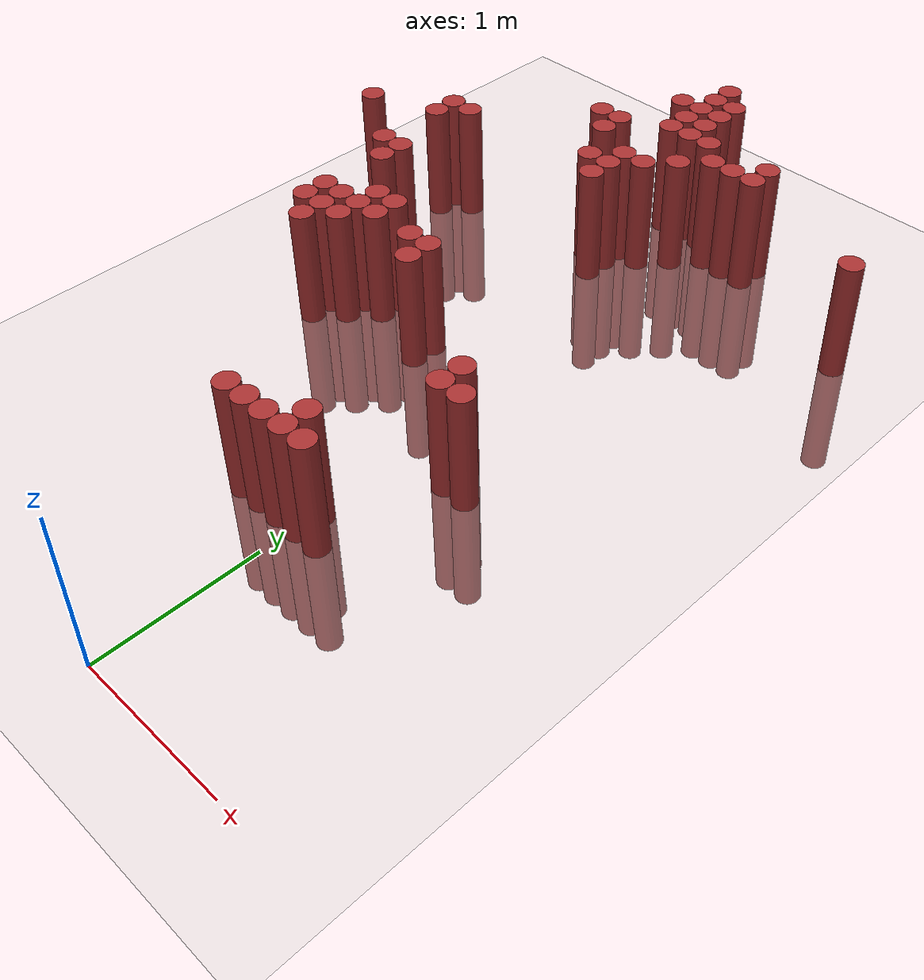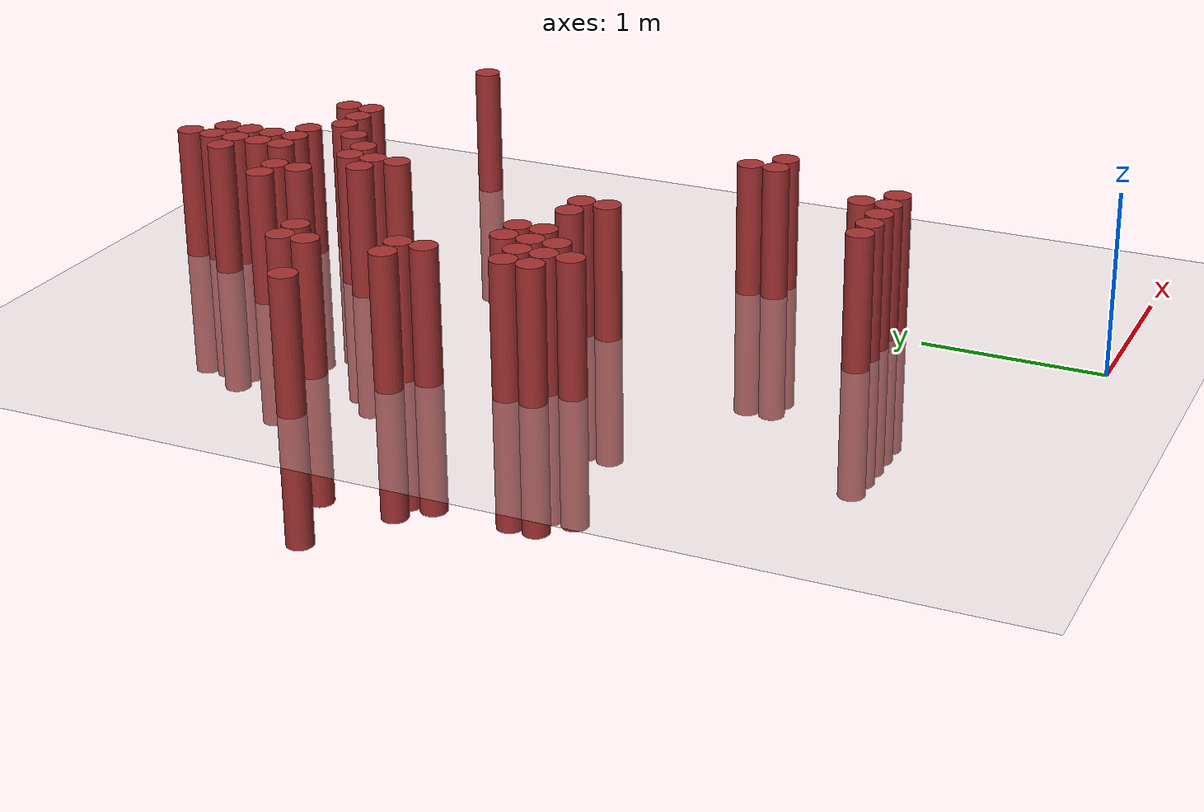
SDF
<sdf version="1.6">
 <world name="default">
  <model name="ground_plane">
   <static>1</static>
   <link name="link">
    <collision name="collision">
     <geometry><plane><normal>0 0 1</normal><size>100 100</size></plane></geometry>
     <surface><friction><ode><mu>100</mu><mu2>50</mu2></ode></friction></surface>
    </collision>
    <visual name="visual">
     <cast_shadows>0</cast_shadows>
     <geometry><plane><normal>0 0 1</normal><size>100 100</size></plane></geometry>
     <material>
      <script><uri>file://media/materials/scripts/gazebo.material</uri><name>Gazebo/Grey</name></script>
     </material>
    </visual>
   </link>
  </model>
  <model name="unit_cylinder_322">
   <static>1</static>
   <pose>-2.075000 3.625000 0.000000 0.000000 0.000000 0.000000</pose>
   <link name="link">
    <inertial>
     <mass>1</mass>
     <inertia><ixx>0.145833</ixx><ixy>0</ixy><ixz>0</ixz><iyy>0.145833</iyy><iyz>0</iyz><izz>0.125</izz></inertia>
    </inertial>
    <collision name="collision">
     <geometry><cylinder><radius>0.075000</radius><length>1.5</length></cylinder></geometry>
    </collision>
    <visual name="visual">
     <geometry><cylinder><radius>0.075000</radius><length>1.5</length></cylinder></geometry>
     <material>
      <ambient>0.648000 0.192000 0.192000 1</ambient>
      <diffuse>0.648000 0.192000 0.192000 1</diffuse>
     </material>
     <material>
      <script><name>Gazebo/Grey</name><uri>file://media/materials/scripts/gazebo.material</uri></script>
     </material>
    </visual>
   </link>
  </model>
  <model name="unit_cylinder_324">
   <static>1</static>
   <pose>-1.625000 3.325000 0.000000 0.000000 0.000000 0.000000</pose>
   <link name="link">
    <inertial>
     <mass>1</mass>
     <inertia><ixx>0.145833</ixx><ixy>0</ixy><ixz>0</ixz><iyy>0.145833</iyy><iyz>0</iyz><izz>0.125</izz></inertia>
    </inertial>
    <collision name="collision">
     <geometry><cylinder><radius>0.075000</radius><length>1.5</length></cylinder></geometry>
    </collision>
    <visual name="visual">
     <geometry><cylinder><radius>0.075000</radius><length>1.5</length></cylinder></geometry>
     <material>
      <ambient>0.648000 0.192000 0.192000 1</ambient>
      <diffuse>0.648000 0.192000 0.192000 1</diffuse>
     </material>
     <material>
      <script><name>Gazebo/Grey</name><uri>file://media/materials/scripts/gazebo.material</uri></script>
     </material>
    </visual>
   </link>
  </model>
  <model name="unit_cylinder_325">
   <static>1</static>
   <pose>-1.625000 3.775000 0.000000 0.000000 0.000000 0.000000</pose>
   <link name="link">
    <inertial>
     <mass>1</mass>
     <inertia><ixx>0.145833</ixx><ixy>0</ixy><ixz>0</ixz><iyy>0.145833</iyy><iyz>0</iyz><izz>0.125</izz></inertia>
    </inertial>
    <collision name="collision">
     <geometry><cylinder><radius>0.075000</radius><length>1.5</length></cylinder></geometry>
    </collision>
    <visual name="visual">
     <geometry><cylinder><radius>0.075000</radius><length>1.5</length></cylinder></geometry>
     <material>
      <ambient>0.648000 0.192000 0.192000 1</ambient>
      <diffuse>0.648000 0.192000 0.192000 1</diffuse>
     </material>
     <material>
      <script><name>Gazebo/Grey</name><uri>file://media/materials/scripts/gazebo.material</uri></script>
     </material>
    </visual>
   </link>
  </model>
  <model name="unit_cylinder_326">
   <static>1</static>
   <pose>-1.625000 3.925000 0.000000 0.000000 0.000000 0.000000</pose>
   <link name="link">
    <inertial>
     <mass>1</mass>
     <inertia><ixx>0.145833</ixx><ixy>0</ixy><ixz>0</ixz><iyy>0.145833</iyy><iyz>0</iyz><izz>0.125</izz></inertia>
    </inertial>
    <collision name="collision">
     <geometry><cylinder><radius>0.075000</radius><length>1.5</length></cylinder></geometry>
    </collision>
    <visual name="visual">
     <geometry><cylinder><radius>0.075000</radius><length>1.5</length></cylinder></geometry>
     <material>
      <ambient>0.648000 0.192000 0.192000 1</ambient>
      <diffuse>0.648000 0.192000 0.192000 1</diffuse>
     </material>
     <material>
      <script><name>Gazebo/Grey</name><uri>file://media/materials/scripts/gazebo.material</uri></script>
     </material>
    </visual>
   </link>
  </model>
  <model name="unit_cylinder_327">
   <static>1</static>
   <pose>-1.475000 2.575000 0.000000 0.000000 0.000000 0.000000</pose>
   <link name="link">
    <inertial>
     <mass>1</mass>
     <inertia><ixx>0.145833</ixx><ixy>0</ixy><ixz>0</ixz><iyy>0.145833</iyy><iyz>0</iyz><izz>0.125</izz></inertia>
    </inertial>
    <collision name="collision">
     <geometry><cylinder><radius>0.075000</radius><length>1.5</length></cylinder></geometry>
    </collision>
    <visual name="visual">
     <geometry><cylinder><radius>0.075000</radius><length>1.5</length></cylinder></geometry>
     <material>
      <ambient>0.648000 0.192000 0.192000 1</ambient>
      <diffuse>0.648000 0.192000 0.192000 1</diffuse>
     </material>
     <material>
      <script><name>Gazebo/Grey</name><uri>file://media/materials/scripts/gazebo.material</uri></script>
     </material>
    </visual>
   </link>
  </model>
  <model name="unit_cylinder_328">
   <static>1</static>
   <pose>-1.475000 2.725000 0.000000 0.000000 0.000000 0.000000</pose>
   <link name="link">
    <inertial>
     <mass>1</mass>
     <inertia><ixx>0.145833</ixx><ixy>0</ixy><ixz>0</ixz><iyy>0.145833</iyy><iyz>0</iyz><izz>0.125</izz></inertia>
    </inertial>
    <collision name="collision">
     <geometry><cylinder><radius>0.075000</radius><length>1.5</length></cylinder></geometry>
    </collision>
    <visual name="visual">
     <geometry><cylinder><radius>0.075000</radius><length>1.5</length></cylinder></geometry>
     <material>
      <ambient>0.648000 0.192000 0.192000 1</ambient>
      <diffuse>0.648000 0.192000 0.192000 1</diffuse>
     </material>
     <material>
      <script><name>Gazebo/Grey</name><uri>file://media/materials/scripts/gazebo.material</uri></script>
     </material>
    </visual>
   </link>
  </model>
  <model name="unit_cylinder_329">
   <static>1</static>
   <pose>-1.475000 3.175000 0.000000 0.000000 0.000000 0.000000</pose>
   <link name="link">
    <inertial>
     <mass>1</mass>
     <inertia><ixx>0.145833</ixx><ixy>0</ixy><ixz>0</ixz><iyy>0.145833</iyy><iyz>0</iyz><izz>0.125</izz></inertia>
    </inertial>
    <collision name="collision">
     <geometry><cylinder><radius>0.075000</radius><length>1.5</length></cylinder></geometry>
    </collision>
    <visual name="visual">
     <geometry><cylinder><radius>0.075000</radius><length>1.5</length></cylinder></geometry>
     <material>
      <ambient>0.648000 0.192000 0.192000 1</ambient>
      <diffuse>0.648000 0.192000 0.192000 1</diffuse>
     </material>
     <material>
      <script><name>Gazebo/Grey</name><uri>file://media/materials/scripts/gazebo.material</uri></script>
     </material>
    </visual>
   </link>
  </model>
  <model name="unit_cylinder_330">
   <static>1</static>
   <pose>-1.475000 3.325000 0.000000 0.000000 0.000000 0.000000</pose>
   <link name="link">
    <inertial>
     <mass>1</mass>
     <inertia><ixx>0.145833</ixx><ixy>0</ixy><ixz>0</ixz><iyy>0.145833</iyy><iyz>0</iyz><izz>0.125</izz></inertia>
    </inertial>
    <collision name="collision">
     <geometry><cylinder><radius>0.075000</radius><length>1.5</length></cylinder></geometry>
    </collision>
    <visual name="visual">
     <geometry><cylinder><radius>0.075000</radius><length>1.5</length></cylinder></geometry>
     <material>
      <ambient>0.648000 0.192000 0.192000 1</ambient>
      <diffuse>0.648000 0.192000 0.192000 1</diffuse>
     </material>
     <material>
      <script><name>Gazebo/Grey</name><uri>file://media/materials/scripts/gazebo.material</uri></script>
     </material>
    </visual>
   </link>
  </model>
  <model name="unit_cylinder_331">
   <static>1</static>
   <pose>-1.475000 3.925000 0.000000 0.000000 0.000000 0.000000</pose>
   <link name="link">
    <inertial>
     <mass>1</mass>
     <inertia><ixx>0.145833</ixx><ixy>0</ixy><ixz>0</ixz><iyy>0.145833</iyy><iyz>0</iyz><izz>0.125</izz></inertia>
    </inertial>
    <collision name="collision">
     <geometry><cylinder><radius>0.075000</radius><length>1.5</length></cylinder></geometry>
    </collision>
    <visual name="visual">
     <geometry><cylinder><radius>0.075000</radius><length>1.5</length></cylinder></geometry>
     <material>
      <ambient>0.648000 0.192000 0.192000 1</ambient>
      <diffuse>0.648000 0.192000 0.192000 1</diffuse>
     </material>
     <material>
      <script><name>Gazebo/Grey</name><uri>file://media/materials/scripts/gazebo.material</uri></script>
     </material>
    </visual>
   </link>
  </model>
  <model name="unit_cylinder_332">
   <static>1</static>
   <pose>-1.325000 2.425000 0.000000 0.000000 0.000000 0.000000</pose>
   <link name="link">
    <inertial>
     <mass>1</mass>
     <inertia><ixx>0.145833</ixx><ixy>0</ixy><ixz>0</ixz><iyy>0.145833</iyy><iyz>0</iyz><izz>0.125</izz></inertia>
    </inertial>
    <collision name="collision">
     <geometry><cylinder><radius>0.075000</radius><length>1.5</length></cylinder></geometry>
    </collision>
    <visual name="visual">
     <geometry><cylinder><radius>0.075000</radius><length>1.5</length></cylinder></geometry>
     <material>
      <ambient>0.648000 0.192000 0.192000 1</ambient>
      <diffuse>0.648000 0.192000 0.192000 1</diffuse>
     </material>
     <material>
      <script><name>Gazebo/Grey</name><uri>file://media/materials/scripts/gazebo.material</uri></script>
     </material>
    </visual>
   </link>
  </model>
  <model name="unit_cylinder_333">
   <static>1</static>
   <pose>-1.325000 2.575000 0.000000 0.000000 0.000000 0.000000</pose>
   <link name="link">
    <inertial>
     <mass>1</mass>
     <inertia><ixx>0.145833</ixx><ixy>0</ixy><ixz>0</ixz><iyy>0.145833</iyy><iyz>0</iyz><izz>0.125</izz></inertia>
    </inertial>
    <collision name="collision">
     <geometry><cylinder><radius>0.075000</radius><length>1.5</length></cylinder></geometry>
    </collision>
    <visual name="visual">
     <geometry><cylinder><radius>0.075000</radius><length>1.5</length></cylinder></geometry>
     <material>
      <ambient>0.648000 0.192000 0.192000 1</ambient>
      <diffuse>0.648000 0.192000 0.192000 1</diffuse>
     </material>
     <material>
      <script><name>Gazebo/Grey</name><uri>file://media/materials/scripts/gazebo.material</uri></script>
     </material>
    </visual>
   </link>
  </model>
  <model name="unit_cylinder_334">
   <static>1</static>
   <pose>-1.325000 2.725000 0.000000 0.000000 0.000000 0.000000</pose>
   <link name="link">
    <inertial>
     <mass>1</mass>
     <inertia><ixx>0.145833</ixx><ixy>0</ixy><ixz>0</ixz><iyy>0.145833</iyy><iyz>0</iyz><izz>0.125</izz></inertia>
    </inertial>
    <collision name="collision">
     <geometry><cylinder><radius>0.075000</radius><length>1.5</length></cylinder></geometry>
    </collision>
    <visual name="visual">
     <geometry><cylinder><radius>0.075000</radius><length>1.5</length></cylinder></geometry>
     <material>
      <ambient>0.648000 0.192000 0.192000 1</ambient>
      <diffuse>0.648000 0.192000 0.192000 1</diffuse>
     </material>
     <material>
      <script><name>Gazebo/Grey</name><uri>file://media/materials/scripts/gazebo.material</uri></script>
     </material>
    </visual>
   </link>
  </model>
  <model name="unit_cylinder_339">
   <static>1</static>
   <pose>-1.175000 2.575000 0.000000 0.000000 0.000000 0.000000</pose>
   <link name="link">
    <inertial>
     <mass>1</mass>
     <inertia><ixx>0.145833</ixx><ixy>0</ixy><ixz>0</ixz><iyy>0.145833</iyy><iyz>0</iyz><izz>0.125</izz></inertia>
    </inertial>
    <collision name="collision">
     <geometry><cylinder><radius>0.075000</radius><length>1.5</length></cylinder></geometry>
    </collision>
    <visual name="visual">
     <geometry><cylinder><radius>0.075000</radius><length>1.5</length></cylinder></geometry>
     <material>
      <ambient>0.648000 0.192000 0.192000 1</ambient>
      <diffuse>0.648000 0.192000 0.192000 1</diffuse>
     </material>
     <material>
      <script><name>Gazebo/Grey</name><uri>file://media/materials/scripts/gazebo.material</uri></script>
     </material>
    </visual>
   </link>
  </model>
  <model name="unit_cylinder_340">
   <static>1</static>
   <pose>-1.175000 2.725000 0.000000 0.000000 0.000000 0.000000</pose>
   <link name="link">
    <inertial>
     <mass>1</mass>
     <inertia><ixx>0.145833</ixx><ixy>0</ixy><ixz>0</ixz><iyy>0.145833</iyy><iyz>0</iyz><izz>0.125</izz></inertia>
    </inertial>
    <collision name="collision">
     <geometry><cylinder><radius>0.075000</radius><length>1.5</length></cylinder></geometry>
    </collision>
    <visual name="visual">
     <geometry><cylinder><radius>0.075000</radius><length>1.5</length></cylinder></geometry>
     <material>
      <ambient>0.648000 0.192000 0.192000 1</ambient>
      <diffuse>0.648000 0.192000 0.192000 1</diffuse>
     </material>
     <material>
      <script><name>Gazebo/Grey</name><uri>file://media/materials/scripts/gazebo.material</uri></script>
     </material>
    </visual>
   </link>
  </model>
  <model name="unit_cylinder_341">
   <static>1</static>
   <pose>-1.175000 2.875000 0.000000 0.000000 0.000000 0.000000</pose>
   <link name="link">
    <inertial>
     <mass>1</mass>
     <inertia><ixx>0.145833</ixx><ixy>0</ixy><ixz>0</ixz><iyy>0.145833</iyy><iyz>0</iyz><izz>0.125</izz></inertia>
    </inertial>
    <collision name="collision">
     <geometry><cylinder><radius>0.075000</radius><length>1.5</length></cylinder></geometry>
    </collision>
    <visual name="visual">
     <geometry><cylinder><radius>0.075000</radius><length>1.5</length></cylinder></geometry>
     <material>
      <ambient>0.648000 0.192000 0.192000 1</ambient>
      <diffuse>0.648000 0.192000 0.192000 1</diffuse>
     </material>
     <material>
      <script><name>Gazebo/Grey</name><uri>file://media/materials/scripts/gazebo.material</uri></script>
     </material>
    </visual>
   </link>
  </model>
  <model name="unit_cylinder_347">
   <static>1</static>
   <pose>-1.025000 2.725000 0.000000 0.000000 0.000000 0.000000</pose>
   <link name="link">
    <inertial>
     <mass>1</mass>
     <inertia><ixx>0.145833</ixx><ixy>0</ixy><ixz>0</ixz><iyy>0.145833</iyy><iyz>0</iyz><izz>0.125</izz></inertia>
    </inertial>
    <collision name="collision">
     <geometry><cylinder><radius>0.075000</radius><length>1.5</length></cylinder></geometry>
    </collision>
    <visual name="visual">
     <geometry><cylinder><radius>0.075000</radius><length>1.5</length></cylinder></geometry>
     <material>
      <ambient>0.648000 0.192000 0.192000 1</ambient>
      <diffuse>0.648000 0.192000 0.192000 1</diffuse>
     </material>
     <material>
      <script><name>Gazebo/Grey</name><uri>file://media/materials/scripts/gazebo.material</uri></script>
     </material>
    </visual>
   </link>
  </model>
  <model name="unit_cylinder_348">
   <static>1</static>
   <pose>-1.025000 2.875000 0.000000 0.000000 0.000000 0.000000</pose>
   <link name="link">
    <inertial>
     <mass>1</mass>
     <inertia><ixx>0.145833</ixx><ixy>0</ixy><ixz>0</ixz><iyy>0.145833</iyy><iyz>0</iyz><izz>0.125</izz></inertia>
    </inertial>
    <collision name="collision">
     <geometry><cylinder><radius>0.075000</radius><length>1.5</length></cylinder></geometry>
    </collision>
    <visual name="visual">
     <geometry><cylinder><radius>0.075000</radius><length>1.5</length></cylinder></geometry>
     <material>
      <ambient>0.648000 0.192000 0.192000 1</ambient>
      <diffuse>0.648000 0.192000 0.192000 1</diffuse>
     </material>
     <material>
      <script><name>Gazebo/Grey</name><uri>file://media/materials/scripts/gazebo.material</uri></script>
     </material>
    </visual>
   </link>
  </model>
  <model name="unit_cylinder_353">
   <static>1</static>
   <pose>-0.875000 4.525000 0.000000 0.000000 0.000000 0.000000</pose>
   <link name="link">
    <inertial>
     <mass>1</mass>
     <inertia><ixx>0.145833</ixx><ixy>0</ixy><ixz>0</ixz><iyy>0.145833</iyy><iyz>0</iyz><izz>0.125</izz></inertia>
    </inertial>
    <collision name="collision">
     <geometry><cylinder><radius>0.075000</radius><length>1.5</length></cylinder></geometry>
    </collision>
    <visual name="visual">
     <geometry><cylinder><radius>0.075000</radius><length>1.5</length></cylinder></geometry>
     <material>
      <ambient>0.648000 0.192000 0.192000 1</ambient>
      <diffuse>0.648000 0.192000 0.192000 1</diffuse>
     </material>
     <material>
      <script><name>Gazebo/Grey</name><uri>file://media/materials/scripts/gazebo.material</uri></script>
     </material>
    </visual>
   </link>
  </model>
  <model name="unit_cylinder_354">
   <static>1</static>
   <pose>-0.725000 2.725000 0.000000 0.000000 0.000000 0.000000</pose>
   <link name="link">
    <inertial>
     <mass>1</mass>
     <inertia><ixx>0.145833</ixx><ixy>0</ixy><ixz>0</ixz><iyy>0.145833</iyy><iyz>0</iyz><izz>0.125</izz></inertia>
    </inertial>
    <collision name="collision">
     <geometry><cylinder><radius>0.075000</radius><length>1.5</length></cylinder></geometry>
    </collision>
    <visual name="visual">
     <geometry><cylinder><radius>0.075000</radius><length>1.5</length></cylinder></geometry>
     <material>
      <ambient>0.648000 0.192000 0.192000 1</ambient>
      <diffuse>0.648000 0.192000 0.192000 1</diffuse>
     </material>
     <material>
      <script><name>Gazebo/Grey</name><uri>file://media/materials/scripts/gazebo.material</uri></script>
     </material>
    </visual>
   </link>
  </model>
  <model name="unit_cylinder_355">
   <static>1</static>
   <pose>-0.725000 4.375000 0.000000 0.000000 0.000000 0.000000</pose>
   <link name="link">
    <inertial>
     <mass>1</mass>
     <inertia><ixx>0.145833</ixx><ixy>0</ixy><ixz>0</ixz><iyy>0.145833</iyy><iyz>0</iyz><izz>0.125</izz></inertia>
    </inertial>
    <collision name="collision">
     <geometry><cylinder><radius>0.075000</radius><length>1.5</length></cylinder></geometry>
    </collision>
    <visual name="visual">
     <geometry><cylinder><radius>0.075000</radius><length>1.5</length></cylinder></geometry>
     <material>
      <ambient>0.648000 0.192000 0.192000 1</ambient>
      <diffuse>0.648000 0.192000 0.192000 1</diffuse>
     </material>
     <material>
      <script><name>Gazebo/Grey</name><uri>file://media/materials/scripts/gazebo.material</uri></script>
     </material>
    </visual>
   </link>
  </model>
  <model name="unit_cylinder_356">
   <static>1</static>
   <pose>-0.725000 4.525000 0.000000 0.000000 0.000000 0.000000</pose>
   <link name="link">
    <inertial>
     <mass>1</mass>
     <inertia><ixx>0.145833</ixx><ixy>0</ixy><ixz>0</ixz><iyy>0.145833</iyy><iyz>0</iyz><izz>0.125</izz></inertia>
    </inertial>
    <collision name="collision">
     <geometry><cylinder><radius>0.075000</radius><length>1.5</length></cylinder></geometry>
    </collision>
    <visual name="visual">
     <geometry><cylinder><radius>0.075000</radius><length>1.5</length></cylinder></geometry>
     <material>
      <ambient>0.648000 0.192000 0.192000 1</ambient>
      <diffuse>0.648000 0.192000 0.192000 1</diffuse>
     </material>
     <material>
      <script><name>Gazebo/Grey</name><uri>file://media/materials/scripts/gazebo.material</uri></script>
     </material>
    </visual>
   </link>
  </model>
  <model name="unit_cylinder_359">
   <static>1</static>
   <pose>-0.575000 2.575000 0.000000 0.000000 0.000000 0.000000</pose>
   <link name="link">
    <inertial>
     <mass>1</mass>
     <inertia><ixx>0.145833</ixx><ixy>0</ixy><ixz>0</ixz><iyy>0.145833</iyy><iyz>0</iyz><izz>0.125</izz></inertia>
    </inertial>
    <collision name="collision">
     <geometry><cylinder><radius>0.075000</radius><length>1.5</length></cylinder></geometry>
    </collision>
    <visual name="visual">
     <geometry><cylinder><radius>0.075000</radius><length>1.5</length></cylinder></geometry>
     <material>
      <ambient>0.648000 0.192000 0.192000 1</ambient>
      <diffuse>0.648000 0.192000 0.192000 1</diffuse>
     </material>
     <material>
      <script><name>Gazebo/Grey</name><uri>file://media/materials/scripts/gazebo.material</uri></script>
     </material>
    </visual>
   </link>
  </model>
  <model name="unit_cylinder_360">
   <static>1</static>
   <pose>-0.575000 2.725000 0.000000 0.000000 0.000000 0.000000</pose>
   <link name="link">
    <inertial>
     <mass>1</mass>
     <inertia><ixx>0.145833</ixx><ixy>0</ixy><ixz>0</ixz><iyy>0.145833</iyy><iyz>0</iyz><izz>0.125</izz></inertia>
    </inertial>
    <collision name="collision">
     <geometry><cylinder><radius>0.075000</radius><length>1.5</length></cylinder></geometry>
    </collision>
    <visual name="visual">
     <geometry><cylinder><radius>0.075000</radius><length>1.5</length></cylinder></geometry>
     <material>
      <ambient>0.648000 0.192000 0.192000 1</ambient>
      <diffuse>0.648000 0.192000 0.192000 1</diffuse>
     </material>
     <material>
      <script><name>Gazebo/Grey</name><uri>file://media/materials/scripts/gazebo.material</uri></script>
     </material>
    </visual>
   </link>
  </model>
  <model name="unit_cylinder_361">
   <static>1</static>
   <pose>-0.575000 4.075000 0.000000 0.000000 0.000000 0.000000</pose>
   <link name="link">
    <inertial>
     <mass>1</mass>
     <inertia><ixx>0.145833</ixx><ixy>0</ixy><ixz>0</ixz><iyy>0.145833</iyy><iyz>0</iyz><izz>0.125</izz></inertia>
    </inertial>
    <collision name="collision">
     <geometry><cylinder><radius>0.075000</radius><length>1.5</length></cylinder></geometry>
    </collision>
    <visual name="visual">
     <geometry><cylinder><radius>0.075000</radius><length>1.5</length></cylinder></geometry>
     <material>
      <ambient>0.648000 0.192000 0.192000 1</ambient>
      <diffuse>0.648000 0.192000 0.192000 1</diffuse>
     </material>
     <material>
      <script><name>Gazebo/Grey</name><uri>file://media/materials/scripts/gazebo.material</uri></script>
     </material>
    </visual>
   </link>
  </model>
  <model name="unit_cylinder_362">
   <static>1</static>
   <pose>-0.575000 4.975000 0.000000 0.000000 0.000000 0.000000</pose>
   <link name="link">
    <inertial>
     <mass>1</mass>
     <inertia><ixx>0.145833</ixx><ixy>0</ixy><ixz>0</ixz><iyy>0.145833</iyy><iyz>0</iyz><izz>0.125</izz></inertia>
    </inertial>
    <collision name="collision">
     <geometry><cylinder><radius>0.075000</radius><length>1.5</length></cylinder></geometry>
    </collision>
    <visual name="visual">
     <geometry><cylinder><radius>0.075000</radius><length>1.5</length></cylinder></geometry>
     <material>
      <ambient>0.648000 0.192000 0.192000 1</ambient>
      <diffuse>0.648000 0.192000 0.192000 1</diffuse>
     </material>
     <material>
      <script><name>Gazebo/Grey</name><uri>file://media/materials/scripts/gazebo.material</uri></script>
     </material>
    </visual>
   </link>
  </model>
  <model name="unit_cylinder_367">
   <static>1</static>
   <pose>-0.425000 1.225000 0.000000 0.000000 0.000000 0.000000</pose>
   <link name="link">
    <inertial>
     <mass>1</mass>
     <inertia><ixx>0.145833</ixx><ixy>0</ixy><ixz>0</ixz><iyy>0.145833</iyy><iyz>0</iyz><izz>0.125</izz></inertia>
    </inertial>
    <collision name="collision">
     <geometry><cylinder><radius>0.075000</radius><length>1.5</length></cylinder></geometry>
    </collision>
    <visual name="visual">
     <geometry><cylinder><radius>0.075000</radius><length>1.5</length></cylinder></geometry>
     <material>
      <ambient>0.648000 0.192000 0.192000 1</ambient>
      <diffuse>0.648000 0.192000 0.192000 1</diffuse>
     </material>
     <material>
      <script><name>Gazebo/Grey</name><uri>file://media/materials/scripts/gazebo.material</uri></script>
     </material>
    </visual>
   </link>
  </model>
  <model name="unit_cylinder_368">
   <static>1</static>
   <pose>-0.425000 3.925000 0.000000 0.000000 0.000000 0.000000</pose>
   <link name="link">
    <inertial>
     <mass>1</mass>
     <inertia><ixx>0.145833</ixx><ixy>0</ixy><ixz>0</ixz><iyy>0.145833</iyy><iyz>0</iyz><izz>0.125</izz></inertia>
    </inertial>
    <collision name="collision">
     <geometry><cylinder><radius>0.075000</radius><length>1.5</length></cylinder></geometry>
    </collision>
    <visual name="visual">
     <geometry><cylinder><radius>0.075000</radius><length>1.5</length></cylinder></geometry>
     <material>
      <ambient>0.648000 0.192000 0.192000 1</ambient>
      <diffuse>0.648000 0.192000 0.192000 1</diffuse>
     </material>
     <material>
      <script><name>Gazebo/Grey</name><uri>file://media/materials/scripts/gazebo.material</uri></script>
     </material>
    </visual>
   </link>
  </model>
  <model name="unit_cylinder_369">
   <static>1</static>
   <pose>-0.425000 4.075000 0.000000 0.000000 0.000000 0.000000</pose>
   <link name="link">
    <inertial>
     <mass>1</mass>
     <inertia><ixx>0.145833</ixx><ixy>0</ixy><ixz>0</ixz><iyy>0.145833</iyy><iyz>0</iyz><izz>0.125</izz></inertia>
    </inertial>
    <collision name="collision">
     <geometry><cylinder><radius>0.075000</radius><length>1.5</length></cylinder></geometry>
    </collision>
    <visual name="visual">
     <geometry><cylinder><radius>0.075000</radius><length>1.5</length></cylinder></geometry>
     <material>
      <ambient>0.648000 0.192000 0.192000 1</ambient>
      <diffuse>0.648000 0.192000 0.192000 1</diffuse>
     </material>
     <material>
      <script><name>Gazebo/Grey</name><uri>file://media/materials/scripts/gazebo.material</uri></script>
     </material>
    </visual>
   </link>
  </model>
  <model name="unit_cylinder_370">
   <static>1</static>
   <pose>-0.425000 4.225000 0.000000 0.000000 0.000000 0.000000</pose>
   <link name="link">
    <inertial>
     <mass>1</mass>
     <inertia><ixx>0.145833</ixx><ixy>0</ixy><ixz>0</ixz><iyy>0.145833</iyy><iyz>0</iyz><izz>0.125</izz></inertia>
    </inertial>
    <collision name="collision">
     <geometry><cylinder><radius>0.075000</radius><length>1.5</length></cylinder></geometry>
    </collision>
    <visual name="visual">
     <geometry><cylinder><radius>0.075000</radius><length>1.5</length></cylinder></geometry>
     <material>
      <ambient>0.648000 0.192000 0.192000 1</ambient>
      <diffuse>0.648000 0.192000 0.192000 1</diffuse>
     </material>
     <material>
      <script><name>Gazebo/Grey</name><uri>file://media/materials/scripts/gazebo.material</uri></script>
     </material>
    </visual>
   </link>
  </model>
  <model name="unit_cylinder_371">
   <static>1</static>
   <pose>-0.425000 4.675000 0.000000 0.000000 0.000000 0.000000</pose>
   <link name="link">
    <inertial>
     <mass>1</mass>
     <inertia><ixx>0.145833</ixx><ixy>0</ixy><ixz>0</ixz><iyy>0.145833</iyy><iyz>0</iyz><izz>0.125</izz></inertia>
    </inertial>
    <collision name="collision">
     <geometry><cylinder><radius>0.075000</radius><length>1.5</length></cylinder></geometry>
    </collision>
    <visual name="visual">
     <geometry><cylinder><radius>0.075000</radius><length>1.5</length></cylinder></geometry>
     <material>
      <ambient>0.648000 0.192000 0.192000 1</ambient>
      <diffuse>0.648000 0.192000 0.192000 1</diffuse>
     </material>
     <material>
      <script><name>Gazebo/Grey</name><uri>file://media/materials/scripts/gazebo.material</uri></script>
     </material>
    </visual>
   </link>
  </model>
  <model name="unit_cylinder_372">
   <static>1</static>
   <pose>-0.425000 4.825000 0.000000 0.000000 0.000000 0.000000</pose>
   <link name="link">
    <inertial>
     <mass>1</mass>
     <inertia><ixx>0.145833</ixx><ixy>0</ixy><ixz>0</ixz><iyy>0.145833</iyy><iyz>0</iyz><izz>0.125</izz></inertia>
    </inertial>
    <collision name="collision">
     <geometry><cylinder><radius>0.075000</radius><length>1.5</length></cylinder></geometry>
    </collision>
    <visual name="visual">
     <geometry><cylinder><radius>0.075000</radius><length>1.5</length></cylinder></geometry>
     <material>
      <ambient>0.648000 0.192000 0.192000 1</ambient>
      <diffuse>0.648000 0.192000 0.192000 1</diffuse>
     </material>
     <material>
      <script><name>Gazebo/Grey</name><uri>file://media/materials/scripts/gazebo.material</uri></script>
     </material>
    </visual>
   </link>
  </model>
  <model name="unit_cylinder_373">
   <static>1</static>
   <pose>-0.425000 4.975000 0.000000 0.000000 0.000000 0.000000</pose>
   <link name="link">
    <inertial>
     <mass>1</mass>
     <inertia><ixx>0.145833</ixx><ixy>0</ixy><ixz>0</ixz><iyy>0.145833</iyy><iyz>0</iyz><izz>0.125</izz></inertia>
    </inertial>
    <collision name="collision">
     <geometry><cylinder><radius>0.075000</radius><length>1.5</length></cylinder></geometry>
    </collision>
    <visual name="visual">
     <geometry><cylinder><radius>0.075000</radius><length>1.5</length></cylinder></geometry>
     <material>
      <ambient>0.648000 0.192000 0.192000 1</ambient>
      <diffuse>0.648000 0.192000 0.192000 1</diffuse>
     </material>
     <material>
      <script><name>Gazebo/Grey</name><uri>file://media/materials/scripts/gazebo.material</uri></script>
     </material>
    </visual>
   </link>
  </model>
  <model name="unit_cylinder_374">
   <static>1</static>
   <pose>-0.425000 5.125000 0.000000 0.000000 0.000000 0.000000</pose>
   <link name="link">
    <inertial>
     <mass>1</mass>
     <inertia><ixx>0.145833</ixx><ixy>0</ixy><ixz>0</ixz><iyy>0.145833</iyy><iyz>0</iyz><izz>0.125</izz></inertia>
    </inertial>
    <collision name="collision">
     <geometry><cylinder><radius>0.075000</radius><length>1.5</length></cylinder></geometry>
    </collision>
    <visual name="visual">
     <geometry><cylinder><radius>0.075000</radius><length>1.5</length></cylinder></geometry>
     <material>
      <ambient>0.648000 0.192000 0.192000 1</ambient>
      <diffuse>0.648000 0.192000 0.192000 1</diffuse>
     </material>
     <material>
      <script><name>Gazebo/Grey</name><uri>file://media/materials/scripts/gazebo.material</uri></script>
     </material>
    </visual>
   </link>
  </model>
  <model name="unit_cylinder_375">
   <static>1</static>
   <pose>-0.425000 5.275000 0.000000 0.000000 0.000000 0.000000</pose>
   <link name="link">
    <inertial>
     <mass>1</mass>
     <inertia><ixx>0.145833</ixx><ixy>0</ixy><ixz>0</ixz><iyy>0.145833</iyy><iyz>0</iyz><izz>0.125</izz></inertia>
    </inertial>
    <collision name="collision">
     <geometry><cylinder><radius>0.075000</radius><length>1.5</length></cylinder></geometry>
    </collision>
    <visual name="visual">
     <geometry><cylinder><radius>0.075000</radius><length>1.5</length></cylinder></geometry>
     <material>
      <ambient>0.648000 0.192000 0.192000 1</ambient>
      <diffuse>0.648000 0.192000 0.192000 1</diffuse>
     </material>
     <material>
      <script><name>Gazebo/Grey</name><uri>file://media/materials/scripts/gazebo.material</uri></script>
     </material>
    </visual>
   </link>
  </model>
  <model name="unit_cylinder_378">
   <static>1</static>
   <pose>-0.275000 1.225000 0.000000 0.000000 0.000000 0.000000</pose>
   <link name="link">
    <inertial>
     <mass>1</mass>
     <inertia><ixx>0.145833</ixx><ixy>0</ixy><ixz>0</ixz><iyy>0.145833</iyy><iyz>0</iyz><izz>0.125</izz></inertia>
    </inertial>
    <collision name="collision">
     <geometry><cylinder><radius>0.075000</radius><length>1.5</length></cylinder></geometry>
    </collision>
    <visual name="visual">
     <geometry><cylinder><radius>0.075000</radius><length>1.5</length></cylinder></geometry>
     <material>
      <ambient>0.648000 0.192000 0.192000 1</ambient>
      <diffuse>0.648000 0.192000 0.192000 1</diffuse>
     </material>
     <material>
      <script><name>Gazebo/Grey</name><uri>file://media/materials/scripts/gazebo.material</uri></script>
     </material>
    </visual>
   </link>
  </model>
  <model name="unit_cylinder_379">
   <static>1</static>
   <pose>-0.275000 4.225000 0.000000 0.000000 0.000000 0.000000</pose>
   <link name="link">
    <inertial>
     <mass>1</mass>
     <inertia><ixx>0.145833</ixx><ixy>0</ixy><ixz>0</ixz><iyy>0.145833</iyy><iyz>0</iyz><izz>0.125</izz></inertia>
    </inertial>
    <collision name="collision">
     <geometry><cylinder><radius>0.075000</radius><length>1.5</length></cylinder></geometry>
    </collision>
    <visual name="visual">
     <geometry><cylinder><radius>0.075000</radius><length>1.5</length></cylinder></geometry>
     <material>
      <ambient>0.648000 0.192000 0.192000 1</ambient>
      <diffuse>0.648000 0.192000 0.192000 1</diffuse>
     </material>
     <material>
      <script><name>Gazebo/Grey</name><uri>file://media/materials/scripts/gazebo.material</uri></script>
     </material>
    </visual>
   </link>
  </model>
  <model name="unit_cylinder_380">
   <static>1</static>
   <pose>-0.275000 4.675000 0.000000 0.000000 0.000000 0.000000</pose>
   <link name="link">
    <inertial>
     <mass>1</mass>
     <inertia><ixx>0.145833</ixx><ixy>0</ixy><ixz>0</ixz><iyy>0.145833</iyy><iyz>0</iyz><izz>0.125</izz></inertia>
    </inertial>
    <collision name="collision">
     <geometry><cylinder><radius>0.075000</radius><length>1.5</length></cylinder></geometry>
    </collision>
    <visual name="visual">
     <geometry><cylinder><radius>0.075000</radius><length>1.5</length></cylinder></geometry>
     <material>
      <ambient>0.648000 0.192000 0.192000 1</ambient>
      <diffuse>0.648000 0.192000 0.192000 1</diffuse>
     </material>
     <material>
      <script><name>Gazebo/Grey</name><uri>file://media/materials/scripts/gazebo.material</uri></script>
     </material>
    </visual>
   </link>
  </model>
  <model name="unit_cylinder_381">
   <static>1</static>
   <pose>-0.275000 4.825000 0.000000 0.000000 0.000000 0.000000</pose>
   <link name="link">
    <inertial>
     <mass>1</mass>
     <inertia><ixx>0.145833</ixx><ixy>0</ixy><ixz>0</ixz><iyy>0.145833</iyy><iyz>0</iyz><izz>0.125</izz></inertia>
    </inertial>
    <collision name="collision">
     <geometry><cylinder><radius>0.075000</radius><length>1.5</length></cylinder></geometry>
    </collision>
    <visual name="visual">
     <geometry><cylinder><radius>0.075000</radius><length>1.5</length></cylinder></geometry>
     <material>
      <ambient>0.648000 0.192000 0.192000 1</ambient>
      <diffuse>0.648000 0.192000 0.192000 1</diffuse>
     </material>
     <material>
      <script><name>Gazebo/Grey</name><uri>file://media/materials/scripts/gazebo.material</uri></script>
     </material>
    </visual>
   </link>
  </model>
  <model name="unit_cylinder_382">
   <static>1</static>
   <pose>-0.275000 4.975000 0.000000 0.000000 0.000000 0.000000</pose>
   <link name="link">
    <inertial>
     <mass>1</mass>
     <inertia><ixx>0.145833</ixx><ixy>0</ixy><ixz>0</ixz><iyy>0.145833</iyy><iyz>0</iyz><izz>0.125</izz></inertia>
    </inertial>
    <collision name="collision">
     <geometry><cylinder><radius>0.075000</radius><length>1.5</length></cylinder></geometry>
    </collision>
    <visual name="visual">
     <geometry><cylinder><radius>0.075000</radius><length>1.5</length></cylinder></geometry>
     <material>
      <ambient>0.648000 0.192000 0.192000 1</ambient>
      <diffuse>0.648000 0.192000 0.192000 1</diffuse>
     </material>
     <material>
      <script><name>Gazebo/Grey</name><uri>file://media/materials/scripts/gazebo.material</uri></script>
     </material>
    </visual>
   </link>
  </model>
  <model name="unit_cylinder_383">
   <static>1</static>
   <pose>-0.275000 5.125000 0.000000 0.000000 0.000000 0.000000</pose>
   <link name="link">
    <inertial>
     <mass>1</mass>
     <inertia><ixx>0.145833</ixx><ixy>0</ixy><ixz>0</ixz><iyy>0.145833</iyy><iyz>0</iyz><izz>0.125</izz></inertia>
    </inertial>
    <collision name="collision">
     <geometry><cylinder><radius>0.075000</radius><length>1.5</length></cylinder></geometry>
    </collision>
    <visual name="visual">
     <geometry><cylinder><radius>0.075000</radius><length>1.5</length></cylinder></geometry>
     <material>
      <ambient>0.648000 0.192000 0.192000 1</ambient>
      <diffuse>0.648000 0.192000 0.192000 1</diffuse>
     </material>
     <material>
      <script><name>Gazebo/Grey</name><uri>file://media/materials/scripts/gazebo.material</uri></script>
     </material>
    </visual>
   </link>
  </model>
  <model name="unit_cylinder_387">
   <static>1</static>
   <pose>-0.125000 1.225000 0.000000 0.000000 0.000000 0.000000</pose>
   <link name="link">
    <inertial>
     <mass>1</mass>
     <inertia><ixx>0.145833</ixx><ixy>0</ixy><ixz>0</ixz><iyy>0.145833</iyy><iyz>0</iyz><izz>0.125</izz></inertia>
    </inertial>
    <collision name="collision">
     <geometry><cylinder><radius>0.075000</radius><length>1.5</length></cylinder></geometry>
    </collision>
    <visual name="visual">
     <geometry><cylinder><radius>0.075000</radius><length>1.5</length></cylinder></geometry>
     <material>
      <ambient>0.648000 0.192000 0.192000 1</ambient>
      <diffuse>0.648000 0.192000 0.192000 1</diffuse>
     </material>
     <material>
      <script><name>Gazebo/Grey</name><uri>file://media/materials/scripts/gazebo.material</uri></script>
     </material>
    </visual>
   </link>
  </model>
  <model name="unit_cylinder_388">
   <static>1</static>
   <pose>-0.125000 4.375000 0.000000 0.000000 0.000000 0.000000</pose>
   <link name="link">
    <inertial>
     <mass>1</mass>
     <inertia><ixx>0.145833</ixx><ixy>0</ixy><ixz>0</ixz><iyy>0.145833</iyy><iyz>0</iyz><izz>0.125</izz></inertia>
    </inertial>
    <collision name="collision">
     <geometry><cylinder><radius>0.075000</radius><length>1.5</length></cylinder></geometry>
    </collision>
    <visual name="visual">
     <geometry><cylinder><radius>0.075000</radius><length>1.5</length></cylinder></geometry>
     <material>
      <ambient>0.648000 0.192000 0.192000 1</ambient>
      <diffuse>0.648000 0.192000 0.192000 1</diffuse>
     </material>
     <material>
      <script><name>Gazebo/Grey</name><uri>file://media/materials/scripts/gazebo.material</uri></script>
     </material>
    </visual>
   </link>
  </model>
  <model name="unit_cylinder_389">
   <static>1</static>
   <pose>-0.125000 4.675000 0.000000 0.000000 0.000000 0.000000</pose>
   <link name="link">
    <inertial>
     <mass>1</mass>
     <inertia><ixx>0.145833</ixx><ixy>0</ixy><ixz>0</ixz><iyy>0.145833</iyy><iyz>0</iyz><izz>0.125</izz></inertia>
    </inertial>
    <collision name="collision">
     <geometry><cylinder><radius>0.075000</radius><length>1.5</length></cylinder></geometry>
    </collision>
    <visual name="visual">
     <geometry><cylinder><radius>0.075000</radius><length>1.5</length></cylinder></geometry>
     <material>
      <ambient>0.648000 0.192000 0.192000 1</ambient>
      <diffuse>0.648000 0.192000 0.192000 1</diffuse>
     </material>
     <material>
      <script><name>Gazebo/Grey</name><uri>file://media/materials/scripts/gazebo.material</uri></script>
     </material>
    </visual>
   </link>
  </model>
  <model name="unit_cylinder_393">
   <static>1</static>
   <pose>0.025000 1.225000 0.000000 0.000000 0.000000 0.000000</pose>
   <link name="link">
    <inertial>
     <mass>1</mass>
     <inertia><ixx>0.145833</ixx><ixy>0</ixy><ixz>0</ixz><iyy>0.145833</iyy><iyz>0</iyz><izz>0.125</izz></inertia>
    </inertial>
    <collision name="collision">
     <geometry><cylinder><radius>0.075000</radius><length>1.5</length></cylinder></geometry>
    </collision>
    <visual name="visual">
     <geometry><cylinder><radius>0.075000</radius><length>1.5</length></cylinder></geometry>
     <material>
      <ambient>0.648000 0.192000 0.192000 1</ambient>
      <diffuse>0.648000 0.192000 0.192000 1</diffuse>
     </material>
     <material>
      <script><name>Gazebo/Grey</name><uri>file://media/materials/scripts/gazebo.material</uri></script>
     </material>
    </visual>
   </link>
  </model>
  <model name="unit_cylinder_394">
   <static>1</static>
   <pose>0.025000 1.375000 0.000000 0.000000 0.000000 0.000000</pose>
   <link name="link">
    <inertial>
     <mass>1</mass>
     <inertia><ixx>0.145833</ixx><ixy>0</ixy><ixz>0</ixz><iyy>0.145833</iyy><iyz>0</iyz><izz>0.125</izz></inertia>
    </inertial>
    <collision name="collision">
     <geometry><cylinder><radius>0.075000</radius><length>1.5</length></cylinder></geometry>
    </collision>
    <visual name="visual">
     <geometry><cylinder><radius>0.075000</radius><length>1.5</length></cylinder></geometry>
     <material>
      <ambient>0.648000 0.192000 0.192000 1</ambient>
      <diffuse>0.648000 0.192000 0.192000 1</diffuse>
     </material>
     <material>
      <script><name>Gazebo/Grey</name><uri>file://media/materials/scripts/gazebo.material</uri></script>
     </material>
    </visual>
   </link>
  </model>
  <model name="unit_cylinder_395">
   <static>1</static>
   <pose>0.025000 4.525000 0.000000 0.000000 0.000000 0.000000</pose>
   <link name="link">
    <inertial>
     <mass>1</mass>
     <inertia><ixx>0.145833</ixx><ixy>0</ixy><ixz>0</ixz><iyy>0.145833</iyy><iyz>0</iyz><izz>0.125</izz></inertia>
    </inertial>
    <collision name="collision">
     <geometry><cylinder><radius>0.075000</radius><length>1.5</length></cylinder></geometry>
    </collision>
    <visual name="visual">
     <geometry><cylinder><radius>0.075000</radius><length>1.5</length></cylinder></geometry>
     <material>
      <ambient>0.648000 0.192000 0.192000 1</ambient>
      <diffuse>0.648000 0.192000 0.192000 1</diffuse>
     </material>
     <material>
      <script><name>Gazebo/Grey</name><uri>file://media/materials/scripts/gazebo.material</uri></script>
     </material>
    </visual>
   </link>
  </model>
  <model name="unit_cylinder_399">
   <static>1</static>
   <pose>0.175000 1.225000 0.000000 0.000000 0.000000 0.000000</pose>
   <link name="link">
    <inertial>
     <mass>1</mass>
     <inertia><ixx>0.145833</ixx><ixy>0</ixy><ixz>0</ixz><iyy>0.145833</iyy><iyz>0</iyz><izz>0.125</izz></inertia>
    </inertial>
    <collision name="collision">
     <geometry><cylinder><radius>0.075000</radius><length>1.5</length></cylinder></geometry>
    </collision>
    <visual name="visual">
     <geometry><cylinder><radius>0.075000</radius><length>1.5</length></cylinder></geometry>
     <material>
      <ambient>0.648000 0.192000 0.192000 1</ambient>
      <diffuse>0.648000 0.192000 0.192000 1</diffuse>
     </material>
     <material>
      <script><name>Gazebo/Grey</name><uri>file://media/materials/scripts/gazebo.material</uri></script>
     </material>
    </visual>
   </link>
  </model>
  <model name="unit_cylinder_400">
   <static>1</static>
   <pose>0.175000 4.525000 0.000000 0.000000 0.000000 0.000000</pose>
   <link name="link">
    <inertial>
     <mass>1</mass>
     <inertia><ixx>0.145833</ixx><ixy>0</ixy><ixz>0</ixz><iyy>0.145833</iyy><iyz>0</iyz><izz>0.125</izz></inertia>
    </inertial>
    <collision name="collision">
     <geometry><cylinder><radius>0.075000</radius><length>1.5</length></cylinder></geometry>
    </collision>
    <visual name="visual">
     <geometry><cylinder><radius>0.075000</radius><length>1.5</length></cylinder></geometry>
     <material>
      <ambient>0.648000 0.192000 0.192000 1</ambient>
      <diffuse>0.648000 0.192000 0.192000 1</diffuse>
     </material>
     <material>
      <script><name>Gazebo/Grey</name><uri>file://media/materials/scripts/gazebo.material</uri></script>
     </material>
    </visual>
   </link>
  </model>
  <model name="unit_cylinder_403">
   <static>1</static>
   <pose>0.325000 1.975000 0.000000 0.000000 0.000000 0.000000</pose>
   <link name="link">
    <inertial>
     <mass>1</mass>
     <inertia><ixx>0.145833</ixx><ixy>0</ixy><ixz>0</ixz><iyy>0.145833</iyy><iyz>0</iyz><izz>0.125</izz></inertia>
    </inertial>
    <collision name="collision">
     <geometry><cylinder><radius>0.075000</radius><length>1.5</length></cylinder></geometry>
    </collision>
    <visual name="visual">
     <geometry><cylinder><radius>0.075000</radius><length>1.5</length></cylinder></geometry>
     <material>
      <ambient>0.648000 0.192000 0.192000 1</ambient>
      <diffuse>0.648000 0.192000 0.192000 1</diffuse>
     </material>
     <material>
      <script><name>Gazebo/Grey</name><uri>file://media/materials/scripts/gazebo.material</uri></script>
     </material>
    </visual>
   </link>
  </model>
  <model name="unit_cylinder_404">
   <static>1</static>
   <pose>0.325000 2.125000 0.000000 0.000000 0.000000 0.000000</pose>
   <link name="link">
    <inertial>
     <mass>1</mass>
     <inertia><ixx>0.145833</ixx><ixy>0</ixy><ixz>0</ixz><iyy>0.145833</iyy><iyz>0</iyz><izz>0.125</izz></inertia>
    </inertial>
    <collision name="collision">
     <geometry><cylinder><radius>0.075000</radius><length>1.5</length></cylinder></geometry>
    </collision>
    <visual name="visual">
     <geometry><cylinder><radius>0.075000</radius><length>1.5</length></cylinder></geometry>
     <material>
      <ambient>0.648000 0.192000 0.192000 1</ambient>
      <diffuse>0.648000 0.192000 0.192000 1</diffuse>
     </material>
     <material>
      <script><name>Gazebo/Grey</name><uri>file://media/materials/scripts/gazebo.material</uri></script>
     </material>
    </visual>
   </link>
  </model>
  <model name="unit_cylinder_405">
   <static>1</static>
   <pose>0.325000 4.525000 0.000000 0.000000 0.000000 0.000000</pose>
   <link name="link">
    <inertial>
     <mass>1</mass>
     <inertia><ixx>0.145833</ixx><ixy>0</ixy><ixz>0</ixz><iyy>0.145833</iyy><iyz>0</iyz><izz>0.125</izz></inertia>
    </inertial>
    <collision name="collision">
     <geometry><cylinder><radius>0.075000</radius><length>1.5</length></cylinder></geometry>
    </collision>
    <visual name="visual">
     <geometry><cylinder><radius>0.075000</radius><length>1.5</length></cylinder></geometry>
     <material>
      <ambient>0.648000 0.192000 0.192000 1</ambient>
      <diffuse>0.648000 0.192000 0.192000 1</diffuse>
     </material>
     <material>
      <script><name>Gazebo/Grey</name><uri>file://media/materials/scripts/gazebo.material</uri></script>
     </material>
    </visual>
   </link>
  </model>
  <model name="unit_cylinder_406">
   <static>1</static>
   <pose>0.325000 4.675000 0.000000 0.000000 0.000000 0.000000</pose>
   <link name="link">
    <inertial>
     <mass>1</mass>
     <inertia><ixx>0.145833</ixx><ixy>0</ixy><ixz>0</ixz><iyy>0.145833</iyy><iyz>0</iyz><izz>0.125</izz></inertia>
    </inertial>
    <collision name="collision">
     <geometry><cylinder><radius>0.075000</radius><length>1.5</length></cylinder></geometry>
    </collision>
    <visual name="visual">
     <geometry><cylinder><radius>0.075000</radius><length>1.5</length></cylinder></geometry>
     <material>
      <ambient>0.648000 0.192000 0.192000 1</ambient>
      <diffuse>0.648000 0.192000 0.192000 1</diffuse>
     </material>
     <material>
      <script><name>Gazebo/Grey</name><uri>file://media/materials/scripts/gazebo.material</uri></script>
     </material>
    </visual>
   </link>
  </model>
  <model name="unit_cylinder_408">
   <static>1</static>
   <pose>0.475000 1.975000 0.000000 0.000000 0.000000 0.000000</pose>
   <link name="link">
    <inertial>
     <mass>1</mass>
     <inertia><ixx>0.145833</ixx><ixy>0</ixy><ixz>0</ixz><iyy>0.145833</iyy><iyz>0</iyz><izz>0.125</izz></inertia>
    </inertial>
    <collision name="collision">
     <geometry><cylinder><radius>0.075000</radius><length>1.5</length></cylinder></geometry>
    </collision>
    <visual name="visual">
     <geometry><cylinder><radius>0.075000</radius><length>1.5</length></cylinder></geometry>
     <material>
      <ambient>0.648000 0.192000 0.192000 1</ambient>
      <diffuse>0.648000 0.192000 0.192000 1</diffuse>
     </material>
     <material>
      <script><name>Gazebo/Grey</name><uri>file://media/materials/scripts/gazebo.material</uri></script>
     </material>
    </visual>
   </link>
  </model>
  <model name="unit_cylinder_418">
   <static>1</static>
   <pose>1.225000 4.225000 0.000000 0.000000 0.000000 0.000000</pose>
   <link name="link">
    <inertial>
     <mass>1</mass>
     <inertia><ixx>0.145833</ixx><ixy>0</ixy><ixz>0</ixz><iyy>0.145833</iyy><iyz>0</iyz><izz>0.125</izz></inertia>
    </inertial>
    <collision name="collision">
     <geometry><cylinder><radius>0.075000</radius><length>1.5</length></cylinder></geometry>
    </collision>
    <visual name="visual">
     <geometry><cylinder><radius>0.075000</radius><length>1.5</length></cylinder></geometry>
     <material>
      <ambient>0.648000 0.192000 0.192000 1</ambient>
      <diffuse>0.648000 0.192000 0.192000 1</diffuse>
     </material>
     <material>
      <script><name>Gazebo/Grey</name><uri>file://media/materials/scripts/gazebo.material</uri></script>
     </material>
    </visual>
   </link>
  </model>
 </world>
</sdf>
